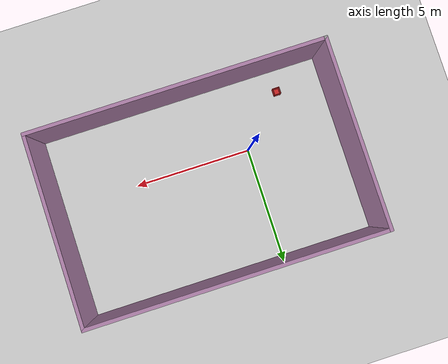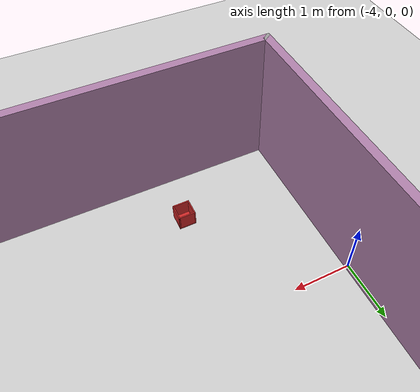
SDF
<sdf version="1.6">
 <world name="default">
  <include><uri>model://ground_plane</uri></include>
  <include><uri>model://sun</uri></include>
  <include><uri>model://PurpleRoom</uri><pose>2.15858 0.860955 0 0 -0 0</pose></include>
  <include><uri>model://bin2_red</uri><pose>-1.96702 -2.0492 0.010001 0 -0 0</pose></include>
 </world>
</sdf>

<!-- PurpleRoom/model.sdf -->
<sdf version='1.6'>
  <model name='PurpleRoom'>
    <pose frame=''>3.321 2.492 0 0 -0 0</pose>
    <link name='Wall_0'>
      <collision name='Wall_0_Collision'>
        <geometry>
          <box>
            <size>8 0.15 2.5</size>
          </box>
        </geometry>
        <pose frame=''>0 0 1.25 0 -0 0</pose>
      </collision>
      <visual name='Wall_0_Visual'>
        <pose frame=''>0 0 1.25 0 -0 0</pose>
        <geometry>
          <box>
            <size>8 0.15 2.5</size>
          </box>
        </geometry>
        <material>
          <script>
            <uri>file://media/materials/scripts/gazebo.material</uri>
            <name>Gazebo/Grey</name>
          </script>
          <ambient>0.678431 0.498039 0.658824 1</ambient>
        </material>
        <meta>
          <layer>0</layer>
        </meta>
      </visual>
      <pose frame=''>-6.175 0 0 0 -0 1.5708</pose>
    </link>
    <link name='Wall_1'>
      <collision name='Wall_1_Collision'>
        <geometry>
          <box>
            <size>12.5 0.15 2.5</size>
          </box>
        </geometry>
        <pose frame=''>0 0 1.25 0 -0 0</pose>
      </collision>
      <visual name='Wall_1_Visual'>
        <pose frame=''>0 0 1.25 0 -0 0</pose>
        <geometry>
          <box>
            <size>12.5 0.15 2.5</size>
          </box>
        </geometry>
        <material>
          <script>
            <uri>file://media/materials/scripts/gazebo.material</uri>
            <name>Gazebo/Grey</name>
          </script>
          <ambient>0.678431 0.498039 0.658824 1</ambient>
        </material>
        <meta>
          <layer>0</layer>
        </meta>
      </visual>
      <pose frame=''>-0 3.925 0 0 -0 0</pose>
    </link>
    <link name='Wall_2'>
      <collision name='Wall_2_Collision'>
        <geometry>
          <box>
            <size>8 0.15 2.5</size>
          </box>
        </geometry>
        <pose frame=''>0 0 1.25 0 -0 0</pose>
      </collision>
      <visual name='Wall_2_Visual'>
        <pose frame=''>0 0 1.25 0 -0 0</pose>
        <geometry>
          <box>
            <size>8 0.15 2.5</size>
          </box>
        </geometry>
        <material>
          <script>
            <uri>file://media/materials/scripts/gazebo.material</uri>
            <name>Gazebo/Grey</name>
          </script>
          <ambient>0.678431 0.498039 0.658824 1</ambient>
        </material>
        <meta>
          <layer>0</layer>
        </meta>
      </visual>
      <pose frame=''>6.175 0 0 0 -0 -1.5708</pose>
    </link>
    <link name='Wall_3'>
      <collision name='Wall_3_Collision'>
        <geometry>
          <box>
            <size>12.5 0.15 2.5</size>
          </box>
        </geometry>
        <pose frame=''>0 0 1.25 0 -0 0</pose>
      </collision>
      <visual name='Wall_3_Visual'>
        <pose frame=''>0 0 1.25 0 -0 0</pose>
        <geometry>
          <box>
            <size>12.5 0.15 2.5</size>
          </box>
        </geometry>
        <material>
          <script>
            <uri>file://media/materials/scripts/gazebo.material</uri>
            <name>Gazebo/Grey</name>
          </script>
          <ambient>0.678431 0.498039 0.658824 1</ambient>
        </material>
        <meta>
          <layer>0</layer>
        </meta>
      </visual>
      <pose frame=''>-0 -3.925 0 0 -0 3.14159</pose>
    </link>
    <link name='Wall_4'>
      <collision name='Wall_4_Collision'>
        <geometry>
          <box>
            <size>0.15 0.15 2.5</size>
          </box>
        </geometry>
        <pose frame=''>0 0 1.25 0 -0 0</pose>
      </collision>
      <visual name='Wall_4_Visual'>
        <pose frame=''>0 0 1.25 0 -0 0</pose>
        <geometry>
          <box>
            <size>0.15 0.15 2.5</size>
          </box>
        </geometry>
        <material>
          <script>
            <uri>file://media/materials/scripts/gazebo.material</uri>
            <name>Gazebo/Grey</name>
          </script>
          <ambient>1 1 1 1</ambient>
        </material>
        <meta>
          <layer>0</layer>
        </meta>
      </visual>
      <pose frame=''>-6.175 -3.925 0 0 -0 0</pose>
    </link>
    <static>1</static>
  </model>
</sdf>

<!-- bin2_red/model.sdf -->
<sdf version='1.6'>
	  <model name='bin2_red'>
	    <link name='link_0'>
	      <pose frame=''>-0 -0.140001 0.14 0 -0 0</pose>
	      <inertial>
		<mass>0.6714</mass>
		<inertia>
		  <ixx>0.00505788</ixx>
		  <ixy>0</ixy>
		  <ixz>0</ixz>
		  <iyy>0.010071</iyy>
		  <iyz>0</iyz>
		  <izz>0.00505788</izz>
		</inertia>
		<pose frame=''>0 0 0 0 -0 0</pose>
	      </inertial>
	      <gravity>1</gravity>
	      <self_collide>0</self_collide>
	      <kinematic>0</kinematic>
	      <enable_wind>0</enable_wind>
	      <visual name='visual'>
		<pose frame=''>0 0 0 0 -0 0</pose>
		<geometry>
		  <box>
		    <size>0.3 0.02 0.3</size>
		  </box>
		</geometry>
		<material>
		  <lighting>1</lighting>
		  <script>
		    <uri>file://media/materials/scripts/gazebo.material</uri>
		    <name>Gazebo/Red</name>
		  </script>
		  <ambient>1 0 0 1</ambient>
		  <diffuse>1 0 0 1</diffuse>
		  <specular>1 0.01 0.01 1</specular>
		  <emissive>0 0 0 1</emissive>
		  <shader type='vertex'>
		    <normal_map>__default__</normal_map>
		  </shader>
		</material>
		<cast_shadows>1</cast_shadows>
		<transparency>0</transparency>
	      </visual>
	      <collision name='collision'>
		<laser_retro>0</laser_retro>
		<max_contacts>10</max_contacts>
		<pose frame=''>0 0 0 0 -0 0</pose>
		<geometry>
		  <box>
		    <size>0.3 0.02 0.3</size>
		  </box>
		</geometry>
		<surface>
		  <friction>
		    <ode>
		      <mu>1</mu>
		      <mu2>1</mu2>
		      <fdir1>0 0 0</fdir1>
		      <slip1>0</slip1>
		      <slip2>0</slip2>
		    </ode>
		    <torsional>
		      <coefficient>1</coefficient>
		      <patch_radius>0</patch_radius>
		      <surface_radius>0</surface_radius>
		      <use_patch_radius>1</use_patch_radius>
		      <ode>
		        <slip>0</slip>
		      </ode>
		    </torsional>
		  </friction>
		  <bounce>
		    <restitution_coefficient>0</restitution_coefficient>
		    <threshold>1e+06</threshold>
		  </bounce>
		  <contact>
		    <collide_without_contact>0</collide_without_contact>
		    <collide_without_contact_bitmask>1</collide_without_contact_bitmask>
		    <collide_bitmask>1</collide_bitmask>
		    <ode>
		      <soft_cfm>0</soft_cfm>
		      <soft_erp>0.2</soft_erp>
		      <kp>1e+13</kp>
		      <kd>1</kd>
		      <max_vel>0.01</max_vel>
		      <min_depth>0</min_depth>
		    </ode>
		    <bullet>
		      <split_impulse>1</split_impulse>
		      <split_impulse_penetration_threshold>-0.01</split_impulse_penetration_threshold>
		      <soft_cfm>0</soft_cfm>
		      <soft_erp>0.2</soft_erp>
		      <kp>1e+13</kp>
		      <kd>1</kd>
		    </bullet>
		  </contact>
		</surface>
	      </collision>
	    </link>
	    <link name='link_0_clone'>
	      <pose frame=''>0 0.139999 0.14 0 -0 0</pose>
	      <inertial>
		<mass>0.6714</mass>
		<inertia>
		  <ixx>0.00505788</ixx>
		  <ixy>0</ixy>
		  <ixz>0</ixz>
		  <iyy>0.010071</iyy>
		  <iyz>0</iyz>
		  <izz>0.00505788</izz>
		</inertia>
		<pose frame=''>0 0 0 0 -0 0</pose>
	      </inertial>
	      <self_collide>0</self_collide>
	      <kinematic>0</kinematic>
	      <enable_wind>0</enable_wind>
	      <gravity>1</gravity>
	      <visual name='visual'>
		<pose frame=''>0 0 0 0 -0 0</pose>
		<geometry>
		  <box>
		    <size>0.3 0.02 0.3</size>
		  </box>
		</geometry>
		<material>
		  <lighting>1</lighting>
		  <script>
		    <uri>file://media/materials/scripts/gazebo.material</uri>
		    <name>Gazebo/Red</name>
		  </script>
		  <ambient>1 0 0 1</ambient>
		  <diffuse>1 0 0 1</diffuse>
		  <specular>1 0.01 0.01 1</specular>
		  <emissive>0 0 0 1</emissive>
		  <shader type='vertex'>
		    <normal_map>__default__</normal_map>
		  </shader>
		</material>
		<cast_shadows>1</cast_shadows>
		<transparency>0</transparency>
	      </visual>
	      <collision name='collision'>
		<laser_retro>0</laser_retro>
		<max_contacts>10</max_contacts>
		<pose frame=''>0 0 0 0 -0 0</pose>
		<geometry>
		  <box>
		    <size>0.3 0.02 0.3</size>
		  </box>
		</geometry>
		<surface>
		  <friction>
		    <ode>
		      <mu>1</mu>
		      <mu2>1</mu2>
		      <fdir1>0 0 0</fdir1>
		      <slip1>0</slip1>
		      <slip2>0</slip2>
		    </ode>
		    <torsional>
		      <coefficient>1</coefficient>
		      <patch_radius>0</patch_radius>
		      <surface_radius>0</surface_radius>
		      <use_patch_radius>1</use_patch_radius>
		      <ode>
		        <slip>0</slip>
		      </ode>
		    </torsional>
		  </friction>
		  <bounce>
		    <restitution_coefficient>0</restitution_coefficient>
		    <threshold>1e+06</threshold>
		  </bounce>
		  <contact>
		    <collide_without_contact>0</collide_without_contact>
		    <collide_without_contact_bitmask>1</collide_without_contact_bitmask>
		    <collide_bitmask>1</collide_bitmask>
		    <ode>
		      <soft_cfm>0</soft_cfm>
		      <soft_erp>0.2</soft_erp>
		      <kp>1e+13</kp>
		      <kd>1</kd>
		      <max_vel>0.01</max_vel>
		      <min_depth>0</min_depth>
		    </ode>
		    <bullet>
		      <split_impulse>1</split_impulse>
		      <split_impulse_penetration_threshold>-0.01</split_impulse_penetration_threshold>
		      <soft_cfm>0</soft_cfm>
		      <soft_erp>0.2</soft_erp>
		      <kp>1e+13</kp>
		      <kd>1</kd>
		    </bullet>
		  </contact>
		</surface>
	      </collision>
	    </link>
	    <link name='link_0_clone_0'>
	      <pose frame=''>-0.14 -1e-06 0.14 0 -0 1.5708</pose>
	      <inertial>
		<mass>0.6714</mass>
		<inertia>
		  <ixx>0.00505788</ixx>
		  <ixy>0</ixy>
		  <ixz>0</ixz>
		  <iyy>0.010071</iyy>
		  <iyz>0</iyz>
		  <izz>0.00505788</izz>
		</inertia>
		<pose frame=''>0 0 0 0 -0 0</pose>
	      </inertial>
	      <self_collide>0</self_collide>
	      <kinematic>0</kinematic>
	      <gravity>1</gravity>
	      <enable_wind>0</enable_wind>
	      <visual name='visual'>
		<pose frame=''>0 0 0 0 -0 0</pose>
		<geometry>
		  <box>
		    <size>0.3 0.02 0.3</size>
		  </box>
		</geometry>
		<material>
		  <lighting>1</lighting>
		  <script>
		    <uri>file://media/materials/scripts/gazebo.material</uri>
		    <name>Gazebo/Red</name>
		  </script>
		  <ambient>1 0 0 1</ambient>
		  <diffuse>1 0 0 1</diffuse>
		  <specular>1 0.01 0.01 1</specular>
		  <emissive>0 0 0 1</emissive>
		  <shader type='vertex'>
		    <normal_map>__default__</normal_map>
		  </shader>
		</material>
		<cast_shadows>1</cast_shadows>
		<transparency>0</transparency>
	      </visual>
	      <collision name='collision'>
		<laser_retro>0</laser_retro>
		<max_contacts>10</max_contacts>
		<pose frame=''>0 0 0 0 -0 0</pose>
		<geometry>
		  <box>
		    <size>0.3 0.02 0.3</size>
		  </box>
		</geometry>
		<surface>
		  <friction>
		    <ode>
		      <mu>1</mu>
		      <mu2>1</mu2>
		      <fdir1>0 0 0</fdir1>
		      <slip1>0</slip1>
		      <slip2>0</slip2>
		    </ode>
		    <torsional>
		      <coefficient>1</coefficient>
		      <patch_radius>0</patch_radius>
		      <surface_radius>0</surface_radius>
		      <use_patch_radius>1</use_patch_radius>
		      <ode>
		        <slip>0</slip>
		      </ode>
		    </torsional>
		  </friction>
		  <bounce>
		    <restitution_coefficient>0</restitution_coefficient>
		    <threshold>1e+06</threshold>
		  </bounce>
		  <contact>
		    <collide_without_contact>0</collide_without_contact>
		    <collide_without_contact_bitmask>1</collide_without_contact_bitmask>
		    <collide_bitmask>1</collide_bitmask>
		    <ode>
		      <soft_cfm>0</soft_cfm>
		      <soft_erp>0.2</soft_erp>
		      <kp>1e+13</kp>
		      <kd>1</kd>
		      <max_vel>0.01</max_vel>
		      <min_depth>0</min_depth>
		    </ode>
		    <bullet>
		      <split_impulse>1</split_impulse>
		      <split_impulse_penetration_threshold>-0.01</split_impulse_penetration_threshold>
		      <soft_cfm>0</soft_cfm>
		      <soft_erp>0.2</soft_erp>
		      <kp>1e+13</kp>
		      <kd>1</kd>
		    </bullet>
		  </contact>
		</surface>
	      </collision>
	    </link>
	    <link name='link_0_clone_0_clone'>
	      <pose frame=''>0.14 -1e-06 0.14 0 -0 1.5708</pose>
	      <inertial>
		<mass>0.6714</mass>
		<inertia>
		  <ixx>0.00505788</ixx>
		  <ixy>0</ixy>
		  <ixz>0</ixz>
		  <iyy>0.010071</iyy>
		  <iyz>0</iyz>
		  <izz>0.00505788</izz>
		</inertia>
		<pose frame=''>0 0 0 0 -0 0</pose>
	      </inertial>
	      <self_collide>0</self_collide>
	      <kinematic>0</kinematic>
	      <gravity>1</gravity>
	      <enable_wind>0</enable_wind>
	      <visual name='visual'>
		<pose frame=''>0 0 0 0 -0 0</pose>
		<geometry>
		  <box>
		    <size>0.3 0.02 0.3</size>
		  </box>
		</geometry>
		<material>
		  <lighting>1</lighting>
		  <script>
		    <uri>file://media/materials/scripts/gazebo.material</uri>
		    <name>Gazebo/Red</name>
		  </script>
		  <ambient>1 0 0 1</ambient>
		  <diffuse>1 0 0 1</diffuse>
		  <specular>1 0.01 0.01 1</specular>
		  <emissive>0 0 0 1</emissive>
		  <shader type='vertex'>
		    <normal_map>__default__</normal_map>
		  </shader>
		</material>
		<cast_shadows>1</cast_shadows>
		<transparency>0</transparency>
	      </visual>
	      <collision name='collision'>
		<laser_retro>0</laser_retro>
		<max_contacts>10</max_contacts>
		<pose frame=''>0 0 0 0 -0 0</pose>
		<geometry>
		  <box>
		    <size>0.3 0.02 0.3</size>
		  </box>
		</geometry>
		<surface>
		  <friction>
		    <ode>
		      <mu>1</mu>
		      <mu2>1</mu2>
		      <fdir1>0 0 0</fdir1>
		      <slip1>0</slip1>
		      <slip2>0</slip2>
		    </ode>
		    <torsional>
		      <coefficient>1</coefficient>
		      <patch_radius>0</patch_radius>
		      <surface_radius>0</surface_radius>
		      <use_patch_radius>1</use_patch_radius>
		      <ode>
		        <slip>0</slip>
		      </ode>
		    </torsional>
		  </friction>
		  <bounce>
		    <restitution_coefficient>0</restitution_coefficient>
		    <threshold>1e+06</threshold>
		  </bounce>
		  <contact>
		    <collide_without_contact>0</collide_without_contact>
		    <collide_without_contact_bitmask>1</collide_without_contact_bitmask>
		    <collide_bitmask>1</collide_bitmask>
		    <ode>
		      <soft_cfm>0</soft_cfm>
		      <soft_erp>0.2</soft_erp>
		      <kp>1e+13</kp>
		      <kd>1</kd>
		      <max_vel>0.01</max_vel>
		      <min_depth>0</min_depth>
		    </ode>
		    <bullet>
		      <split_impulse>1</split_impulse>
		      <split_impulse_penetration_threshold>-0.01</split_impulse_penetration_threshold>
		      <soft_cfm>0</soft_cfm>
		      <soft_erp>0.2</soft_erp>
		      <kp>1e+13</kp>
		      <kd>1</kd>
		    </bullet>
		  </contact>
		</surface>
	      </collision>
	    </link>
	    <link name='link_0_clone_1'>
	      <pose frame=''>0 0 0 1.5708 -0 0</pose>
	      <inertial>
		<mass>0.6714</mass>
		<inertia>
		  <ixx>0.00505788</ixx>
		  <ixy>0</ixy>
		  <ixz>0</ixz>
		  <iyy>0.010071</iyy>
		  <iyz>0</iyz>
		  <izz>0.00505788</izz>
		</inertia>
		<pose frame=''>0 0 0 0 -0 0</pose>
	      </inertial>
	      <self_collide>0</self_collide>
	      <kinematic>0</kinematic>
	      <gravity>1</gravity>
	      <enable_wind>0</enable_wind>
	      <visual name='visual'>
		<pose frame=''>0 0 0 0 -0 0</pose>
		<geometry>
		  <box>
		    <size>0.3 0.02 0.3</size>
		  </box>
		</geometry>
		<material>
		  <lighting>1</lighting>
		  <script>
		    <uri>file://media/materials/scripts/gazebo.material</uri>
		    <name>Gazebo/Red</name>
		  </script>
		  <ambient>1 0 0 1</ambient>
		  <diffuse>1 0 0 1</diffuse>
		  <specular>1 0.01 0.01 1</specular>
		  <emissive>0 0 0 1</emissive>
		  <shader type='vertex'>
		    <normal_map>__default__</normal_map>
		  </shader>
		</material>
		<cast_shadows>1</cast_shadows>
		<transparency>0</transparency>
	      </visual>
	      <collision name='collision'>
		<laser_retro>0</laser_retro>
		<max_contacts>10</max_contacts>
		<pose frame=''>0 0 0 0 -0 0</pose>
		<geometry>
		  <box>
		    <size>0.3 0.02 0.3</size>
		  </box>
		</geometry>
		<surface>
		  <friction>
		    <ode>
		      <mu>1</mu>
		      <mu2>1</mu2>
		      <fdir1>0 0 0</fdir1>
		      <slip1>0</slip1>
		      <slip2>0</slip2>
		    </ode>
		    <torsional>
		      <coefficient>1</coefficient>
		      <patch_radius>0</patch_radius>
		      <surface_radius>0</surface_radius>
		      <use_patch_radius>1</use_patch_radius>
		      <ode>
		        <slip>0</slip>
		      </ode>
		    </torsional>
		  </friction>
		  <bounce>
		    <restitution_coefficient>0</restitution_coefficient>
		    <threshold>1e+06</threshold>
		  </bounce>
		  <contact>
		    <collide_without_contact>0</collide_without_contact>
		    <collide_without_contact_bitmask>1</collide_without_contact_bitmask>
		    <collide_bitmask>1</collide_bitmask>
		    <ode>
		      <soft_cfm>0</soft_cfm>
		      <soft_erp>0.2</soft_erp>
		      <kp>1e+13</kp>
		      <kd>1</kd>
		      <max_vel>0.01</max_vel>
		      <min_depth>0</min_depth>
		    </ode>
		    <bullet>
		      <split_impulse>1</split_impulse>
		      <split_impulse_penetration_threshold>-0.01</split_impulse_penetration_threshold>
		      <soft_cfm>0</soft_cfm>
		      <soft_erp>0.2</soft_erp>
		      <kp>1e+13</kp>
		      <kd>1</kd>
		    </bullet>
		  </contact>
		</surface>
	      </collision>
	    </link>
	    <joint name='link_0_clone_1_JOINT_3' type='fixed'>
	      <parent>link_0_clone_1</parent>
	      <child>link_0_clone</child>
	      <pose frame=''>0 0 0 0 -0 0</pose>
	      <physics>
		<ode>
		  <limit>
		    <cfm>0</cfm>
		    <erp>0.2</erp>
		  </limit>
		  <suspension>
		    <cfm>0</cfm>
		    <erp>0.2</erp>
		  </suspension>
		</ode>
	      </physics>
	    </joint>
	    <joint name='link_0_clone_1_JOINT_4' type='fixed'>
	      <parent>link_0_clone_1</parent>
	      <child>link_0</child>
	      <pose frame=''>0 0 0 0 -0 0</pose>
	      <physics>
		<ode>
		  <limit>
		    <cfm>0</cfm>
		    <erp>0.2</erp>
		  </limit>
		  <suspension>
		    <cfm>0</cfm>
		    <erp>0.2</erp>
		  </suspension>
		</ode>
	      </physics>
	    </joint>
	    <joint name='link_0_clone_1_JOINT_5' type='fixed'>
	      <parent>link_0_clone_1</parent>
	      <child>link_0_clone_0_clone</child>
	      <pose frame=''>0 0 0 0 -0 0</pose>
	      <physics>
		<ode>
		  <limit>
		    <cfm>0</cfm>
		    <erp>0.2</erp>
		  </limit>
		  <suspension>
		    <cfm>0</cfm>
		    <erp>0.2</erp>
		  </suspension>
		</ode>
	      </physics>
	    </joint>
	    <joint name='link_0_clone_1_JOINT_6' type='fixed'>
	      <parent>link_0_clone_1</parent>
	      <child>link_0_clone_0</child>
	      <pose frame=''>0 0 0 0 -0 0</pose>
	      <physics>
		<ode>
		  <limit>
		    <cfm>0</cfm>
		    <erp>0.2</erp>
		  </limit>
		  <suspension>
		    <cfm>0</cfm>
		    <erp>0.2</erp>
		  </suspension>
		</ode>
	      </physics>
	    </joint>
	    <static>0</static>
	    <allow_auto_disable>1</allow_auto_disable>
	  </model>
	</sdf>
